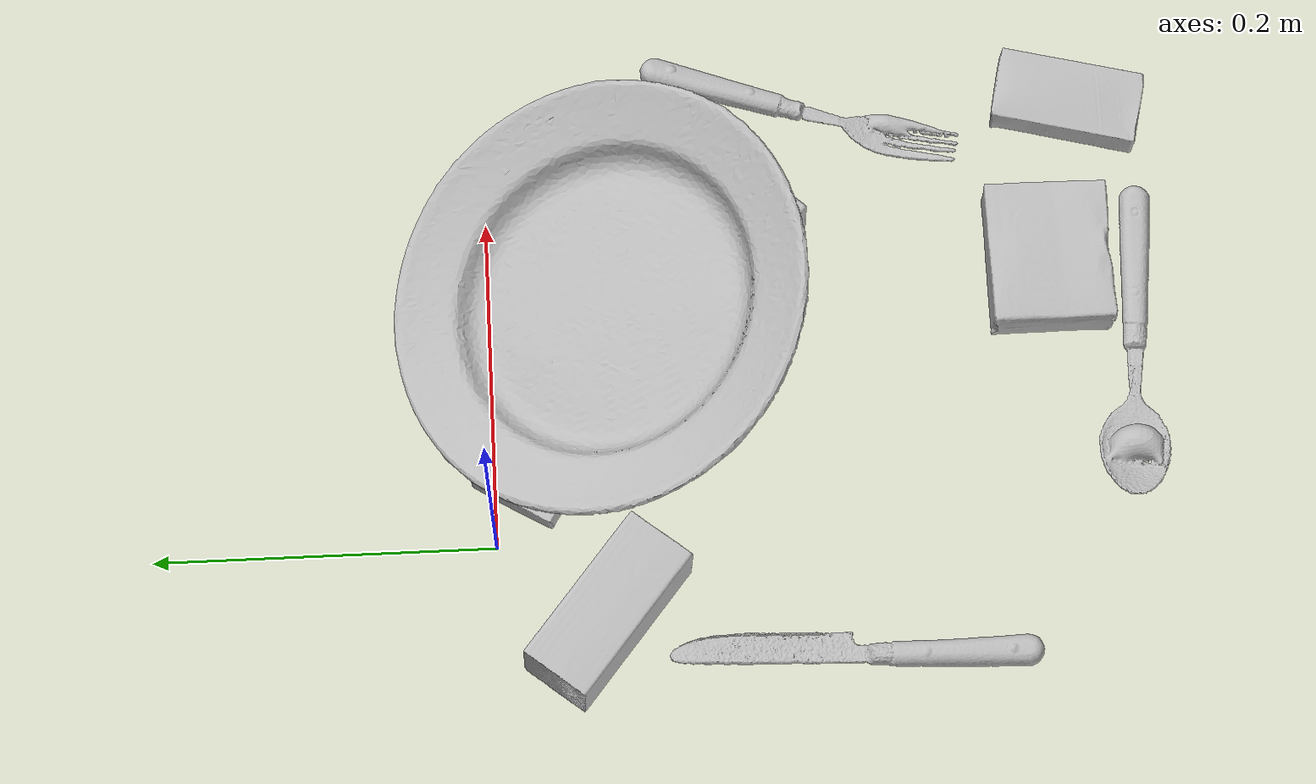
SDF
<sdf version="1.4">
  <world name="default">
    <light name="light1" type="point">
      <pose>0 0 1 0 0 0</pose>
      <diffuse>3 3 3 1</diffuse>
      <specular>3 3 3 1</specular>
    </light>
    <light name="light2" type="point">
      <pose>0 0.5 2 0 0 0</pose>
      <diffuse>1 1 1 1</diffuse>
      <specular>1 1 1 1</specular>
    </light>
    <light name="light3" type="point">
      <pose>0 0.5 2 0 0 0</pose>
      <diffuse>3 3 3 1</diffuse>
      <specular>3 3 3 1</specular>
    </light>
    <scene>
      <ambient>0.7 0.7 0.7</ambient>
    </scene>
    <model name="box11">
      <link name="link_box11">
        <collision name="default">
          <geometry>
            <mesh>
              <uri>model://gelatin_box/collision_meshes/collision.obj</uri>
              <scale>1.0 1.0 1.0</scale>
            </mesh>
          </geometry>
          <surface>
            <friction>
              <ode>
                <mu>0.5</mu>
                <mu2>0.5</mu2>
              </ode>
            </friction>
          <contact>
        <ode>
            <max_vel>0</max_vel>
            <min_depth>0.0001</min_depth>
            <kp>1e8</kp>
        </ode>
    </contact></surface>
        </collision>
        <visual name="default">
          <geometry>
            <mesh>
              <uri>model://gelatin_box/visual_meshes/visual.dae</uri>
              <scale>1.0 1.0 1.0</scale>
            </mesh>
          </geometry>
        </visual>
        <inertial>
          <mass>0.25029057264328003</mass>
          <pose>0.0004319618456065655 0.00011156871914863586 -0.0003640321083366871 -0.0010503719874808634 -0.004755820553863559 0.01644055760983946</pose>
          <inertia>
            <ixx>0.00017668474</ixx>
            <iyy>0.000126205</iyy>
            <izz>0.00026895347</izz>
            <ixy>0</ixy>
            <ixz>0</ixz>
            <iyz>0</iyz>
          </inertia>
        </inertial>
      </link>
      <pose>0.1601097732782364 -0.3323433995246887 0.01516831573098898 0.005597437576294562 -0.007304514978983176 -1.582609513116778</pose>
    </model>
    <model name="box12">
      <link name="link_box12">
        <collision name="default">
          <geometry>
            <mesh>
              <uri>model://rubiks_cube/collision_meshes/collision.obj</uri>
              <scale>1.0 1.0 1.0</scale>
            </mesh>
          </geometry>
          <surface>
            <friction>
              <ode>
                <mu>0.5</mu>
                <mu2>0.5</mu2>
              </ode>
            </friction>
          <contact>
        <ode>
            <max_vel>0</max_vel>
            <min_depth>0.0001</min_depth>
            <kp>1e8</kp>
        </ode>
    </contact></surface>
        </collision>
        <visual name="default">
          <geometry>
            <mesh>
              <uri>model://rubiks_cube/visual_meshes/visual.dae</uri>
              <scale>1.0 1.0 1.0</scale>
            </mesh>
          </geometry>
        </visual>
        <inertial>
          <mass>0.21638615429401398</mass>
          <pose>2.6721043468569405e-05 5.2569666877388954e-05 -7.264316536748083e-06 -0.054671974778446215 -0.0981397652693683 -0.03445575269454635</pose>
          <inertia>
            <ixx>0.00011956789</ixx>
            <iyy>0.00011901029</iyy>
            <izz>0.00012055871</izz>
            <ixy>0</ixy>
            <ixz>0</ixz>
            <iyz>0</iyz>
          </inertia>
        </inertial>
      </link>
      <pose>0.18120551109313965 -0.14916470646858215 0.028678851202130318 -5.398817625019313e-06 -1.408010993400043e-05 2.3812789278034043</pose>
    </model>
    <model name="box13">
      <link name="link_box13">
        <collision name="default">
          <geometry>
            <mesh>
              <uri>model://pudding_box/collision_meshes/collision.obj</uri>
              <scale>0.5 0.5 0.5</scale>
            </mesh>
          </geometry>
          <surface>
            <friction>
              <ode>
                <mu>0.5</mu>
                <mu2>0.5</mu2>
              </ode>
            </friction>
          <contact>
        <ode>
            <max_vel>0</max_vel>
            <min_depth>0.0001</min_depth>
            <kp>1e8</kp>
        </ode>
    </contact></surface>
        </collision>
        <visual name="default">
          <geometry>
            <mesh>
              <uri>model://pudding_box/visual_meshes/visual.dae</uri>
              <scale>0.5 0.5 0.5</scale>
            </mesh>
          </geometry>
        </visual>
        <inertial>
          <mass>0.024692855775356293</mass>
          <pose>0.00024474109522998333 0.00040339428232982755 -0.0002594413817860186 0.005213102294063647 -0.006603794537377036 0.020079827031592012</pose>
          <inertia>
            <ixx>6.9785e-06</ixx>
            <iyy>4.695185e-06</iyy>
            <izz>1.030558e-05</izz>
            <ixy>0</ixy>
            <ixz>0</ixz>
            <iyz>0</iyz>
          </inertia>
        </inertial>
      </link>
      <pose>0.042010534554719925 -0.020630858838558197 0.00996649544686079 0.036489573850396716 0.0014956483246171375 2.5652015628776024</pose>
    </model>
    <model name="box21">
      <link name="link_box21">
        <collision name="default">
          <geometry>
            <mesh>
              <uri>model://wood_block/collision_meshes/collision.obj</uri>
              <scale>0.5 0.5 0.5</scale>
            </mesh>
          </geometry>
          <surface>
            <friction>
              <ode>
                <mu>0.5</mu>
                <mu2>0.5</mu2>
              </ode>
            </friction>
          <contact>
        <ode>
            <max_vel>0</max_vel>
            <min_depth>0.0001</min_depth>
            <kp>1e8</kp>
        </ode>
    </contact></surface>
        </collision>
        <visual name="default">
          <geometry>
            <mesh>
              <uri>model://wood_block/visual_meshes/visual.dae</uri>
              <scale>0.5 0.5 0.5</scale>
            </mesh>
          </geometry>
        </visual>
        <inertial>
          <mass>0.2621258497238159</mass>
          <pose>-2.9066577553749084e-06 -0.000285404734313488 0.00013204291462898254 -0.05220799390803197 -0.005192696360797016 -0.006861376940793837</pose>
          <inertia>
            <ixx>8.7691005e-05</ixx>
            <iyy>0.00027701593</iyy>
            <izz>0.00027597975</izz>
            <ixy>0</ixy>
            <ixz>0</ixz>
            <iyz>0</iyz>
          </inertia>
        </inertial>
      </link>
      <pose>-0.046321481466293335 -0.06266733258962631 0.022629255428910255 -0.005208420488896549 0.005718748520842053 2.463386415175605</pose>
    </model>
    <model name="box22">
      <link name="link_box22">
        <collision name="default">
          <geometry>
            <mesh>
              <uri>model://cracker_box/collision_meshes/collision.obj</uri>
              <scale>0.25 0.25 0.25</scale>
            </mesh>
          </geometry>
          <surface>
            <friction>
              <ode>
                <mu>0.5</mu>
                <mu2>0.5</mu2>
              </ode>
            </friction>
          <contact>
        <ode>
            <max_vel>0</max_vel>
            <min_depth>0.0001</min_depth>
            <kp>1e8</kp>
        </ode>
    </contact></surface>
        </collision>
        <visual name="default">
          <geometry>
            <mesh>
              <uri>model://cracker_box/visual_meshes/visual.dae</uri>
              <scale>0.25 0.25 0.25</scale>
            </mesh>
          </geometry>
        </visual>
        <inertial>
          <mass>0.04544714838266373</mass>
          <pose>0.0002366049593547359 6.358561950037256e-05 -0.0004257383698131889 -0.0003162075981767565 -0.011106493326025165 0.0025467940711340945</pose>
          <inertia>
            <ixx>7.224829e-06</ixx>
            <iyy>1.1929612e-05</iyy>
            <izz>1.702465e-05</izz>
            <ixy>0</ixy>
            <ixz>0</ixz>
            <iyz>0</iyz>
          </inertia>
        </inertial>
      </link>
      <pose>0.1984437257051468 -0.03726795315742493 0.009120448492467403 -0.011787967385622477 -0.0073671518593346925 -2.854380806052416</pose>
    </model>
    <model name="box23">
      <link name="link_box23">
        <collision name="default">
          <geometry>
            <mesh>
              <uri>model://sugar_box/collision_meshes/collision.obj</uri>
              <scale>0.5 0.5 0.5</scale>
            </mesh>
          </geometry>
          <surface>
            <friction>
              <ode>
                <mu>0.5</mu>
                <mu2>0.5</mu2>
              </ode>
            </friction>
          <contact>
        <ode>
            <max_vel>0</max_vel>
            <min_depth>0.0001</min_depth>
            <kp>1e8</kp>
        </ode>
    </contact></surface>
        </collision>
        <visual name="default">
          <geometry>
            <mesh>
              <uri>model://sugar_box/visual_meshes/visual.dae</uri>
              <scale>0.5 0.5 0.5</scale>
            </mesh>
          </geometry>
        </visual>
        <inertial>
          <mass>0.08974423259496689</mass>
          <pose>0.0005171863595023751 1.924554817378521e-05 -0.00018182402709499002 -0.00040462647498757867 0.0010506636387592515 0.0026153785559760484</pose>
          <inertia>
            <ixx>1.869366e-05</ixx>
            <iyy>6.0421757e-05</iyy>
            <izz>7.233205e-05</izz>
            <ixy>0</ixy>
            <ixz>0</ixz>
            <iyz>0</iyz>
          </inertia>
        </inertial>
      </link>
      <pose>0.2612404525279999 -0.35218268632888794 0.011399301700294018 0.0007753561446074273 -0.02343260505479505 1.3310374386512578</pose>
    </model>
    <model name="plate1">
      <link name="link_plate1">
        <collision name="default">
          <geometry>
            <mesh>
              <uri>model://plate/collision_meshes/collision.obj</uri>
              <scale>1.0 1.0 1.0</scale>
            </mesh>
          </geometry>
          <surface>
            <friction>
              <ode>
                <mu>0.5</mu>
                <mu2>0.5</mu2>
              </ode>
            </friction>
          <contact>
        <ode>
            <max_vel>0</max_vel>
            <min_depth>0.0001</min_depth>
            <kp>1e8</kp>
        </ode>
    </contact></surface>
        </collision>
        <visual name="default">
          <geometry>
            <mesh>
              <uri>model://plate/visual_meshes/visual.dae</uri>
              <scale>1.0 1.0 1.0</scale>
            </mesh>
          </geometry>
        </visual>
        <inertial>
          <mass>0.25075921416282654</mass>
          <pose>-0.0006044597248546779 0.00027825814322568476 -0.0010562010575085878 0.0022187872861569474 -0.003225478732834207 0.4526086398584511</pose>
          <inertia>
            <ixx>0.0011730565</ixx>
            <iyy>0.0011618367</iyy>
            <izz>0.0022943232</izz>
            <ixy>0</ixy>
            <ixz>0</ixz>
            <iyz>0</iyz>
          </inertia>
        </inertial>
      </link>
      <pose>0.1332966685295105 -0.06785015761852264 0.05186659097671509 0.2700534449761597 0.300506574551008 2.40293941434074</pose>
    </model>
    <model name="silverware1">
      <link name="link_silverware1">
        <collision name="default">
          <geometry>
            <mesh>
              <uri>model://spoon/collision_meshes/collision.obj</uri>
              <scale>1.0 1.0 1.0</scale>
            </mesh>
          </geometry>
          <surface>
            <friction>
              <ode>
                <mu>0.5</mu>
                <mu2>0.5</mu2>
              </ode>
            </friction>
          <contact>
        <ode>
            <max_vel>0</max_vel>
            <min_depth>0.0001</min_depth>
            <kp>1e8</kp>
        </ode>
    </contact></surface>
        </collision>
        <visual name="default">
          <geometry>
            <mesh>
              <uri>model://spoon/visual_meshes/visual.dae</uri>
              <scale>1.0 1.0 1.0</scale>
            </mesh>
          </geometry>
        </visual>
        <inertial>
          <mass>0.036317918449640274</mass>
          <pose>-0.005526306107640266 -0.0016034167492762208 -0.0007271648501046002 0.03521625205726148 -0.039065835985121374 0.0061506181118877856</pose>
          <inertia>
            <ixx>2.0200612e-06</ixx>
            <iyy>0.00013818844</iyy>
            <izz>0.00013918467</izz>
            <ixy>0</ixy>
            <ixz>0</ixz>
            <iyz>0</iyz>
          </inertia>
        </inertial>
      </link>
      <pose>0.10604958981275558 -0.3819432258605957 0.00838526152074337 0.006728689398665274 0.026893021842920938 3.055121501466718</pose>
    </model>
    <model name="silverware2">
      <link name="link_silverware2">
        <collision name="default">
          <geometry>
            <mesh>
              <uri>model://knife/collision_meshes/collision.obj</uri>
              <scale>1.0 1.0 1.0</scale>
            </mesh>
          </geometry>
          <surface>
            <friction>
              <ode>
                <mu>0.5</mu>
                <mu2>0.5</mu2>
              </ode>
            </friction>
          <contact>
        <ode>
            <max_vel>0</max_vel>
            <min_depth>0.0001</min_depth>
            <kp>1e8</kp>
        </ode>
    </contact></surface>
        </collision>
        <visual name="default">
          <geometry>
            <mesh>
              <uri>model://knife/visual_meshes/visual.dae</uri>
              <scale>1.0 1.0 1.0</scale>
            </mesh>
          </geometry>
        </visual>
        <inertial>
          <mass>0.03166225552558899</mass>
          <pose>-0.02378525584936142 0.0015275123296305537 5.0620161346159875e-05 0.07305183970819301 0.01724842094470774 -0.007409827313526415</pose>
          <inertia>
            <ixx>8.9870355e-07</ixx>
            <iyy>0.00012164128</iyy>
            <izz>0.00012193073</izz>
            <ixy>0</ixy>
            <ixz>0</ixz>
            <iyz>0</iyz>
          </inertia>
        </inertial>
      </link>
      <pose>-0.07114720344543457 -0.2043706476688385 0.007946564815938473 -0.02389465287304175 -0.014543123264912751 1.5345184656019464</pose>
    </model>
    <model name="silverware3">
      <link name="link_silverware3">
        <collision name="default">
          <geometry>
            <mesh>
              <uri>model://fork/collision_meshes/collision.obj</uri>
              <scale>1.0 1.0 1.0</scale>
            </mesh>
          </geometry>
          <surface>
            <friction>
              <ode>
                <mu>0.5</mu>
                <mu2>0.5</mu2>
              </ode>
            </friction>
          <contact>
        <ode>
            <max_vel>0</max_vel>
            <min_depth>0.0001</min_depth>
            <kp>1e8</kp>
        </ode>
    </contact></surface>
        </collision>
        <visual name="default">
          <geometry>
            <mesh>
              <uri>model://fork/visual_meshes/visual.dae</uri>
              <scale>1.0 1.0 1.0</scale>
            </mesh>
          </geometry>
        </visual>
        <inertial>
          <mass>0.03018845245242119</mass>
          <pose>-0.029570050537586212 0.00046588227269239724 0.00032188609475269914 -0.013551782414775644 -0.010977841906558662 0.014453907874592884</pose>
          <inertia>
            <ixx>1.0582761e-06</ixx>
            <iyy>7.881335e-05</iyy>
            <izz>7.928668e-05</izz>
            <ixy>0</ixy>
            <ixz>0</ixz>
            <iyz>0</iyz>
          </inertia>
        </inertial>
      </link>
      <pose>0.2634947896003723 -0.19020287692546844 0.005734394304454327 -0.18587114675619537 0.024445148049748747 -1.8942495153521222</pose>
    </model>
  <physics type="ode">
      <max_contacts>50</max_contacts>
      <ode>
        <solver>
          <type>quick</type>
          <iters>75</iters>
        </solver>
        <constraints>
          <contact_max_correcting_vel>0</contact_max_correcting_vel>
          <contact_surface_layer>0</contact_surface_layer>
        </constraints>
      </ode>
    </physics></world>
</sdf>
